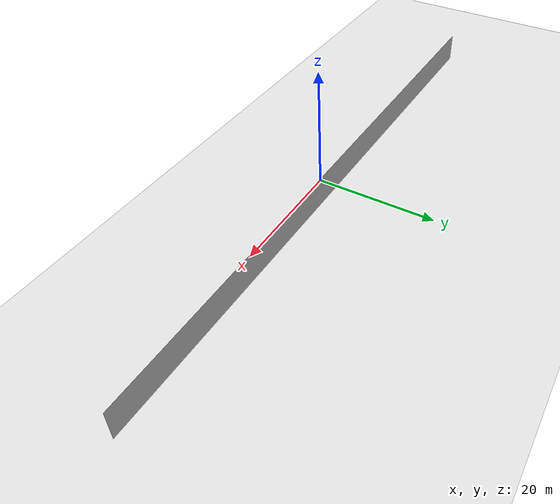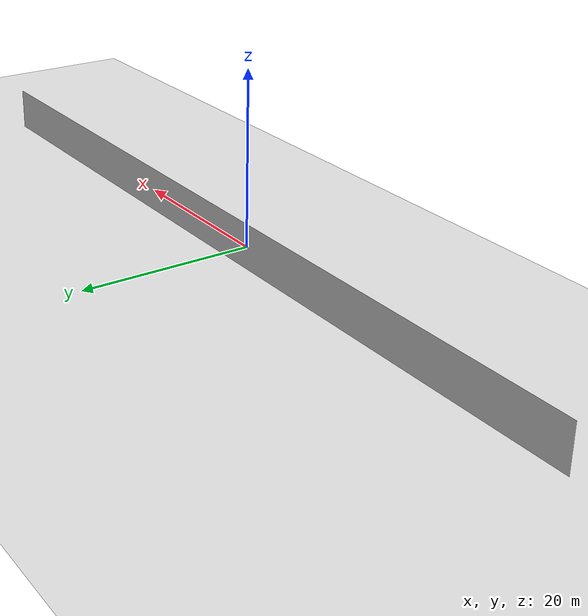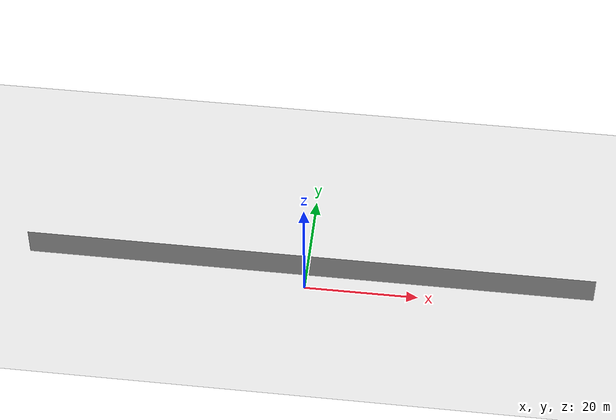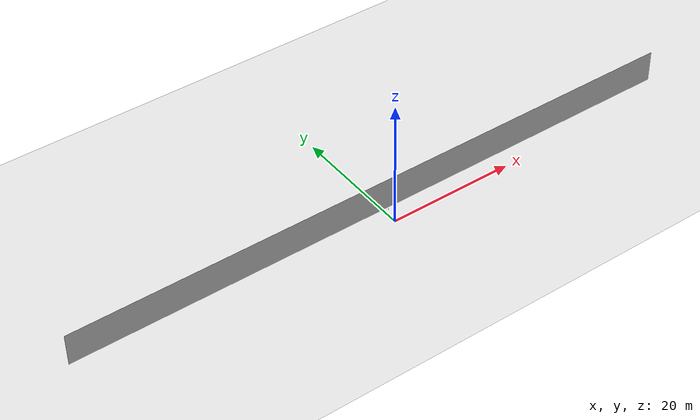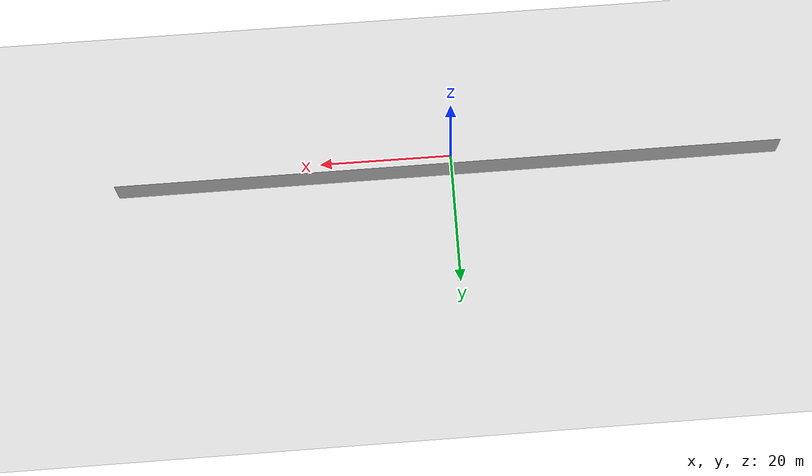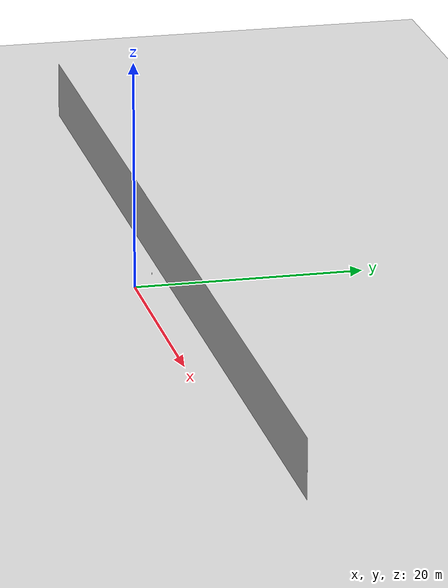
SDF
<sdf version="1.6">
 <world name="default">
  <scene><shadows>0</shadows><background>1 1 1 1</background><ambient>0.4 0.4 0.4 1</ambient></scene>
  <light name="sun" type="directional">
   <pose>0 -3 10 0 -0 0</pose>
   <diffuse>0.8 0.8 0.8 1</diffuse>
   <specular>0.1 0.1 0.1 1</specular>
   <attenuation>
    <range>1000</range>
    <constant>0.9</constant>
    <linear>0.01</linear>
    <quadratic>0.001</quadratic>
   </attenuation>
   <direction>-0.5 0.5 -1</direction>
  </light>
  <model name="ground_plane">
   <static>1</static>
   <link name="link">
    <collision name="collision">
     <geometry><plane><normal>0 0 1</normal><size>100 100</size></plane></geometry>
     <surface><friction><ode><mu>100</mu><mu2>50</mu2></ode></friction></surface>
    </collision>
    <visual name="visual">
     <cast_shadows>0</cast_shadows>
     <geometry><plane><normal>0 0 1</normal><size>100 100</size></plane></geometry>
     <material>
      <script><uri>file://media/materials/scripts/gazebo.material</uri><name>Gazebo/White</name></script>
     </material>
    </visual>
   </link>
  </model>
  <gravity>0 0 0</gravity>
  <magnetic_field>6e-06 2.3e-05 -4.2e-05</magnetic_field>
  <atmosphere type="adiabatic"/>
  <physics name="default_physics" default="0" type="ode">
   <max_step_size>0.001</max_step_size>
   <real_time_factor>1</real_time_factor>
   <real_time_update_rate>1000</real_time_update_rate>
  </physics>
  <scene><ambient>0.4 0.4 0.4 1</ambient><background>0.7 0.7 0.7 1</background><shadows>1</shadows></scene>
  <spherical_coordinates>
   <surface_model>EARTH_WGS84</surface_model>
   <latitude_deg>0</latitude_deg>
   <longitude_deg>0</longitude_deg>
   <elevation>0</elevation>
   <heading_deg>0</heading_deg>
  </spherical_coordinates>
  <model name="box">
   <pose>0.5 3 0 0 -0 0</pose>
   <link name="link">
    <visual name="visual">
     <geometry><box><size>100 0.001 10</size></box></geometry>
     <material>
      <script>
       <uri>model://grey_wall/materials/scripts</uri>
       <uri>model://grey_wall/materials/textures</uri>
       <name>vrc/grey_wall</name>
      </script>
     </material>
    </visual>
    <inertial>
     <inertia><ixx>1</ixx><ixy>0</ixy><ixz>0</ixz><iyy>1</iyy><iyz>0</iyz><izz>1</izz></inertia>
     <mass>1</mass>
    </inertial>
   </link>
  </model>
  <model name="aruco_marker">
   <link name="link">
    <inertial>
     <mass>0.001</mass>
     <inertia>
      <ixx>3.75e-06</ixx>
      <ixy>0</ixy>
      <ixz>0</ixz>
      <iyy>1.875e-06</iyy>
      <iyz>0</iyz>
      <izz>1.875e-06</izz>
     </inertia>
    </inertial>
    <visual name="front_visual">
     <pose>5e-05 0 0 0 -0 0</pose>
     <geometry><box><size>0.0001 0.15 0.15</size></box></geometry>
     <material>
      <script>
       <uri>model://aruco_marker/materials/scripts</uri>
       <uri>model://aruco_marker/materials/textures</uri>
       <name>Marker</name>
      </script>
     </material>
    </visual>
    <visual name="rear_visual">
     <pose>-5e-05 0 0 0 -0 0</pose>
     <geometry><box><size>0.0001 0.15 0.15</size></box></geometry>
    </visual>
    <collision name="collision"><geometry><box><size>0.0001 0.15 0.15</size></box></geometry></collision>
   </link>
   <static>1</static>
   <pose>0 1.5 1.15 0 0 -1.57</pose>
  </model>
  <model name="aruco_marker_0">
   <link name="link">
    <inertial>
     <mass>0.001</mass>
     <inertia>
      <ixx>3.75e-06</ixx>
      <ixy>0</ixy>
      <ixz>0</ixz>
      <iyy>1.875e-06</iyy>
      <iyz>0</iyz>
      <izz>1.875e-06</izz>
     </inertia>
    </inertial>
    <visual name="front_visual">
     <pose>5e-05 0 0 0 -0 0</pose>
     <geometry><box><size>0.0001 0.05 0.05</size></box></geometry>
     <material>
      <script>
       <uri>model://aruco_marker/materials/scripts</uri>
       <uri>model://aruco_marker/materials/textures</uri>
       <name>Marker</name>
      </script>
     </material>
    </visual>
    <visual name="rear_visual">
     <pose>-5e-05 0 0 0 -0 0</pose>
     <geometry><box><size>0.0001 0.05 0.05</size></box></geometry>
    </visual>
    <collision name="collision"><geometry><box><size>0.0001 0.05 0.05</size></box></geometry></collision>
   </link>
   <static>1</static>
   <pose>0.562016 0.902174 1.22043 0 0 -1.57685</pose>
  </model>
 </world>
</sdf>
